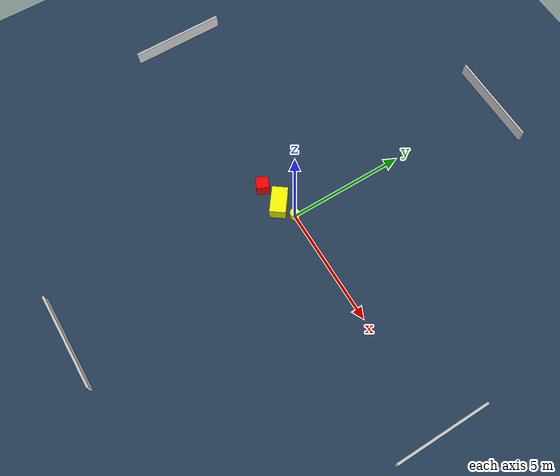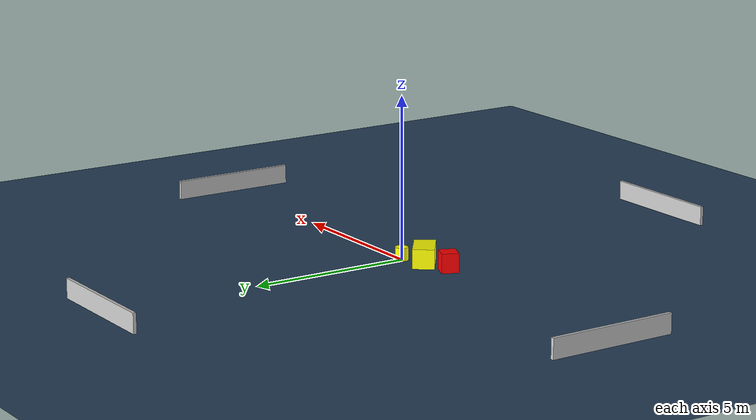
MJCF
<?xml version="1.0" ?>
<mujoco model="generated_environment">
  <option timestep="0.01" integrator="RK4" cone="elliptic"/>
  <default>
    <geom density="1"/>
  </default>
  <asset>
    <texture builtin="gradient" height="3072" name="skybox" rgb1="0.3 0.5 0.7" rgb2="0 0 0" type="skybox" width="512"/>
    <texture builtin="checker" height="300" name="groundplane" rgb1="0.2 0.3 0.4" rgb2="0.1 0.2 0.3" type="2d" width="300"/>
    <material name="groundplane" reflectance="0.2" texrepeat="5 5" texture="groundplane"/>
  </asset>
  <worldbody>
    <light dir="0 0 -1" directional="true" pos="0 0 1.5"/>
    <geom condim="3" friction="0.5 0.005 0.001" material="groundplane" name="floor" pos="0 0 0" size="0 0 0.05" type="plane"/>
    <body name="walls">
      <geom name="wall_1" condim="4" pos="-10.0 0.0 0.3" rgba="0.800000011920929 0.800000011920929 0.800000011920929 1.0" size="0.05 2.0 0.3" type="box"/>
      <geom name="wall_2" condim="4" pos="10.0 0.0 0.3" rgba="0.800000011920929 0.800000011920929 0.800000011920929 1.0" size="0.05 2.0 0.3" type="box"/>
      <geom name="wall_3" condim="4" pos="0.0 -10.0 0.3" rgba="0.800000011920929 0.800000011920929 0.800000011920929 1.0" size="2.0 0.05 0.3" type="box"/>
      <geom name="wall_4" condim="4" pos="0.0 10.0 0.3" rgba="0.800000011920929 0.800000011920929 0.800000011920929 1.0" size="2.0 0.05 0.3" type="box"/>
    </body>
    <body name="robot">
      <joint name="joint_x" type="slide" pos="0 0 0" axis="1 0 0"/>
      <joint name="joint_y" type="slide" pos="0 0 0" axis="0 1 0"/>
      <geom name="robot" type="cylinder" pos="0.0 0.0 0.2" size="0.2 0.2 0.0" mass="5.0" friction="1.0 0.005 0.0001" condim="4" rgba="1.0 1.0 0.0 1.0"/>
    </body>
    <body name="obstacle_1_movable">
      <geom name="obstacle_1_movable" condim="4" pos="-0.7616730036391374 -0.2911256377674038 0.3" euler="0 0 143.1676727050709" friction="0.0 0.005 0.001" rgba="1.0 1.0 0.0 1.0" size="0.5615920107202267 0.32917155582258495 0.3" type="box" mass="0.1"/>
      <joint type="free"/>
    </body>
    <body name="obstacle_2_static">
      <geom name="obstacle_2_static" condim="4" pos="-1.7569065728828206 -0.4733809469854005 0.3" euler="0 0 157.5695724277773" friction="0.0 0.005 0.001" rgba="1.0 0.0 0.0 1.0" size="0.2578394100451923 0.2585683089397023 0.3" type="box"/>
    </body>
  </worldbody>
  <actuator>
    <motor name="actuator_x" joint="joint_x" gear="1" ctrlrange="-1 1"/>
    <motor name="actuator_y" joint="joint_y" gear="1" ctrlrange="-1 1"/>
  </actuator>
</mujoco>
